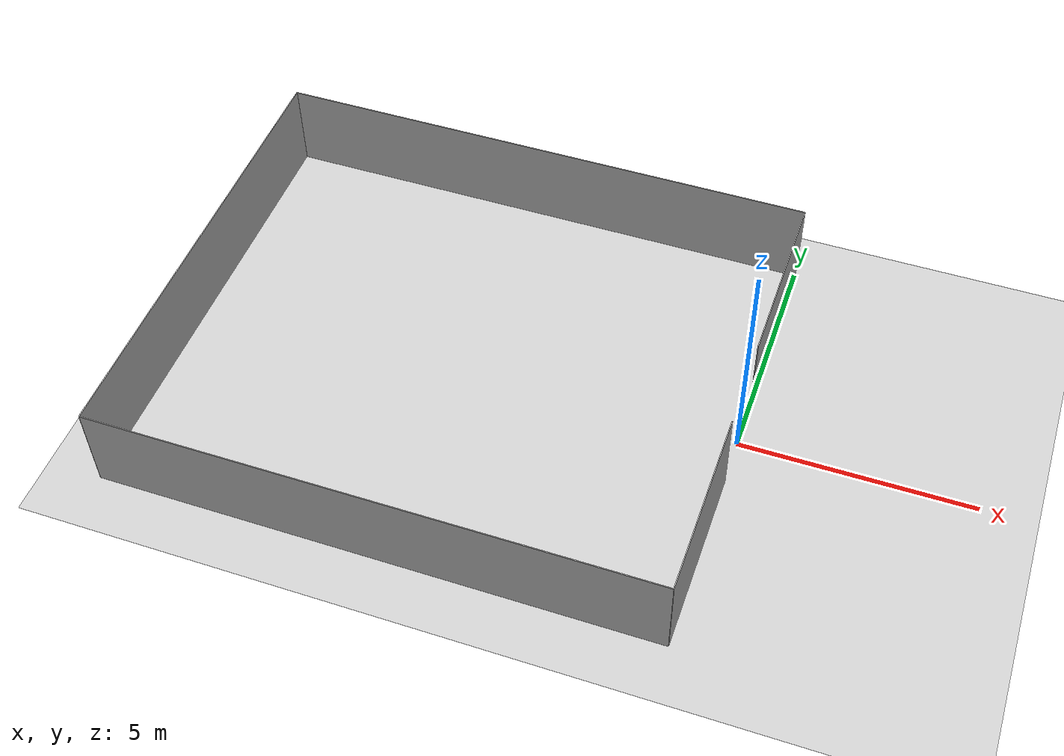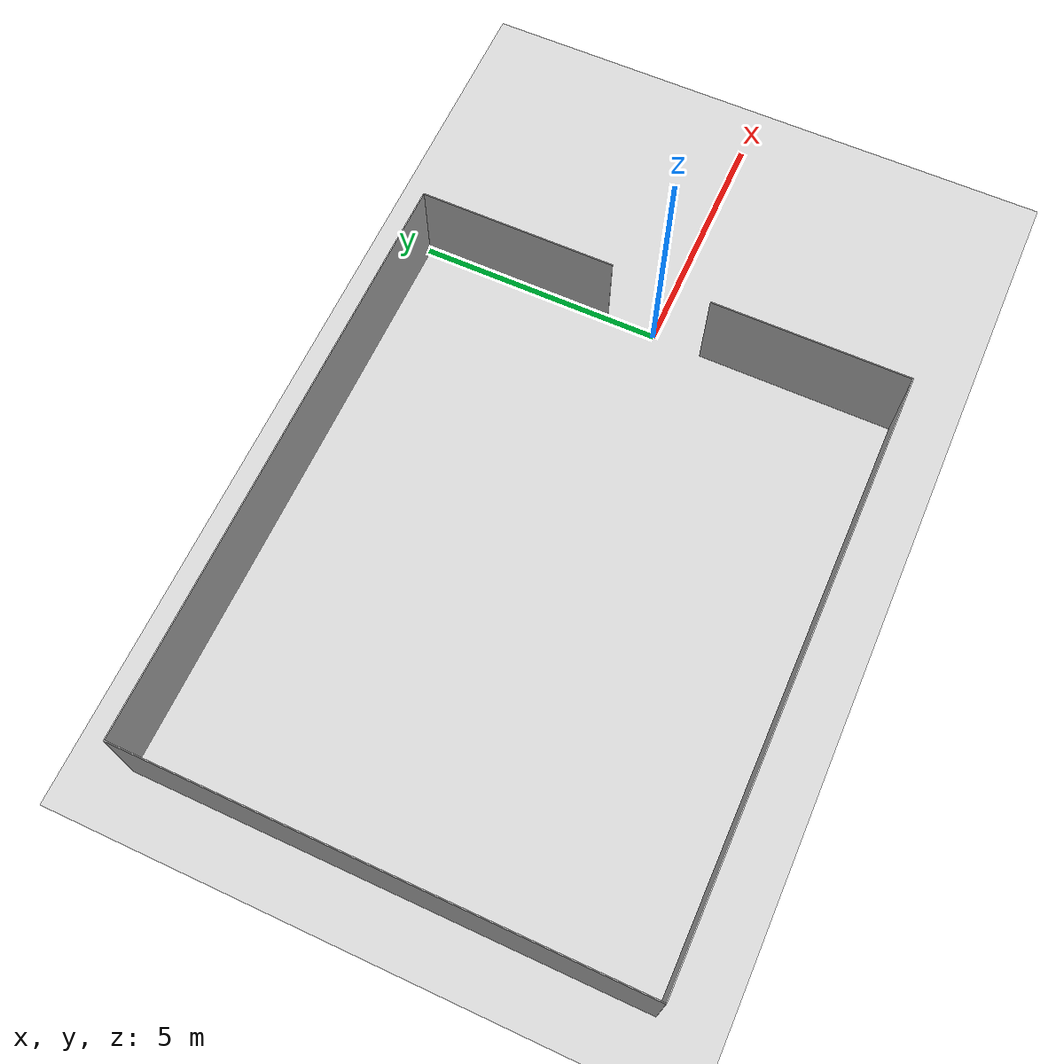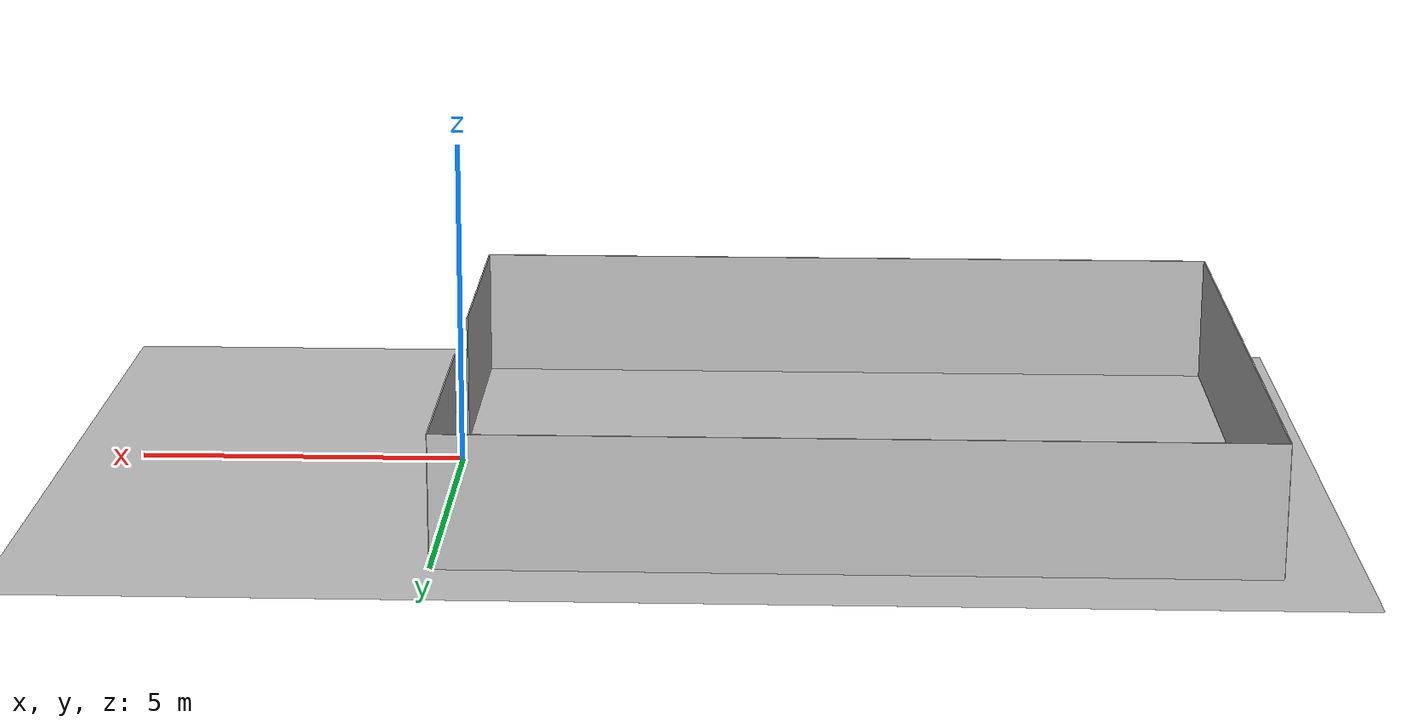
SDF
<?xml version="1.0"?>
<sdf version="1.5">
  <world name="default">

    <scene>
      <ambient>0.4 0.4 0.4 1</ambient>
      <background>0.25 0.25 0.25 1</background>
      <shadows>false</shadows>
    </scene>

    <include>
      <uri>model://ground_plane</uri>
    </include>
    <include>
      <uri>model://sun</uri>
    </include>

      <physics type="ode">
      <max_step_size>0.0018</max_step_size>
      <real_time_factor>10000</real_time_factor>
      <real_time_update_rate>10000</real_time_update_rate>

    </physics>

    <!-- # Immovable ground walls created only once -->
    <model name="immovable">
      <static>true</static>
      <link name="wall_left">
        <pose> -6.0  5.0  1.0  1.57 0 0 </pose>
        <collision name="collision">
          <geometry>
            <box> <size>12.0 2.0 0.02</size> </box>
          </geometry>
        </collision>
        <visual name="visual">
         <geometry>
            <box> <size>12.0 2.0 0.02</size> </box>
          </geometry>
        </visual>
      </link>

      <link name="wall_right">
        <pose> -6.0  -5.0  1.0  1.57 0 0 </pose>
        <collision name="collision">
          <geometry>
            <box> <size>12.0 2.0 0.02</size> </box>
          </geometry>
        </collision>
        <visual name="visual">
         <geometry>
            <box> <size>12.0 2.0 0.02</size> </box>
          </geometry>
        </visual>
      </link>

      <link name="wall_back">
        <pose> -12.0  0  1.0  1.57 0 1.57 </pose>
        <collision name="collision">
          <geometry>
            <box> <size>10.0 2.0 0.02</size> </box>
          </geometry>
        </collision>
        <visual name="visual">
         <geometry>
            <box> <size>10.0 2.0 0.02</size> </box>
          </geometry>
        </visual>
      </link>

      <link name="wall_front_right">
        <pose> 0.0  -3.0  1.0  1.57 0 1.57 </pose>
        <collision name="collision">
          <geometry>
            <box> <size>4.0 2.0 0.02</size> </box>
          </geometry>
        </collision>
        <visual name="visual">
         <geometry>
            <box> <size>4.0 2.0 0.02</size> </box>
          </geometry>
        </visual>
      </link>

      <link name="wall_front_left">
        <pose> 0.0  3.0  1.0  1.57 0 1.57 </pose>
        <collision name="collision">
          <geometry>
            <box> <size>4.0 2.0 0.02</size> </box>
          </geometry>
        </collision>
        <visual name="visual">
         <geometry>
            <box> <size>4.0 2.0 0.02</size> </box>
          </geometry>
        </visual>
      </link>

    </model>

  </world>
</sdf>
